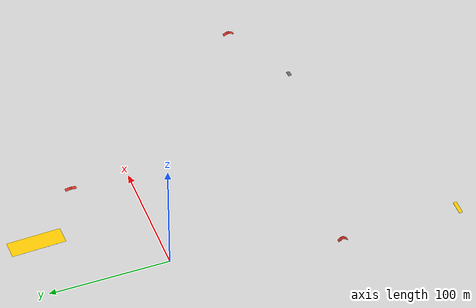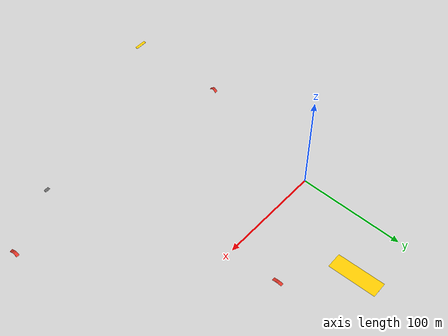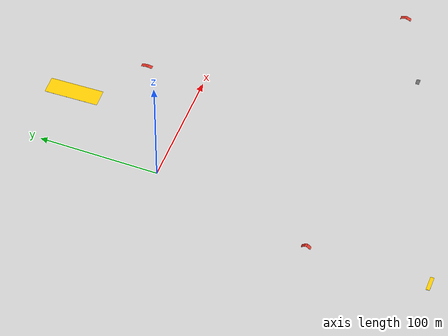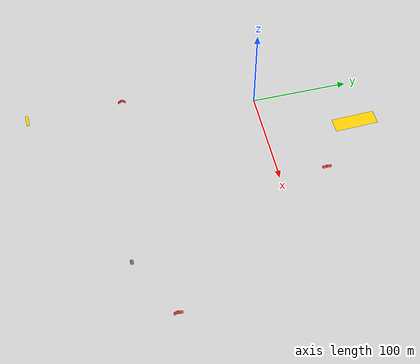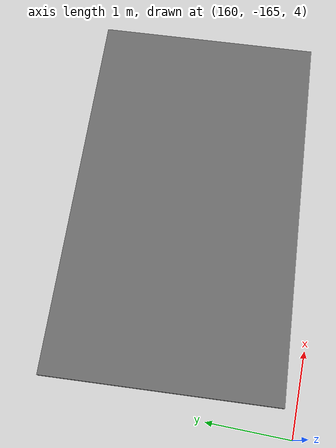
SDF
<sdf version="1.9">
 <world name="Seongdong_gu">
  <plugin filename="gz-sim-physics-system" name="gz::sim::systems::Physics"/>
  <plugin filename="gz-sim-user-commands-system" name="gz::sim::systems::UserCommands"/>
  <plugin filename="gz-sim-scene-broadcaster-system" name="gz::sim::systems::SceneBroadcaster"/>
  <plugin filename="gz-sim-sensors-system" name="gz::sim::systems::Sensors">
   <render_engine>ogre2</render_engine>
  </plugin>
  <plugin filename="gz-sim-imu-system" name="gz::sim::systems::Imu"/>
  <plugin filename="gz-sim-navsat-system" name="gz::sim::systems::NavSat"/>
  <light type="directional" name="sun">
   <pose>0 -7000 7000 0 0 0</pose>
   <diffuse>0.9 0.88 0.82 1</diffuse>
   <specular>0 0 0 1</specular>
   <direction>0.0 0.6 -0.6</direction>
  </light>
  <scene>
   <ambient>0.45 0.48 0.55 1</ambient>
   <grid>false</grid>
   <origin_visual>false</origin_visual>
   <sky><time>10</time><sunrise>6</sunrise><sunset>20</sunset><clouds><speed>12</speed></clouds></sky>
  </scene>
  <physics name="1ms" type="ignored"><dart><collision_detector>bullet</collision_detector></dart></physics>
  <gravity>0 0 -9.8066</gravity>
  <spherical_coordinates>
   <surface_model>EARTH_WGS84</surface_model>
   <latitude_deg>37.54233814881853</latitude_deg>
   <longitude_deg>127.06050643805561</longitude_deg>
   <elevation>15.400000000001455</elevation>
  </spherical_coordinates>
  <include>
   <uri>model://bump_010</uri>
   <pose>162.743332 -163.245650 3.676050 0.000000 0.000000 0.064563</pose>
  </include>
  <include>
   <uri>model://bump_003</uri>
   <pose>52.505330 93.510876 3.656370 0.000000 -0.000000 1.600903</pose>
  </include>
  <include>
   <uri>model://bump_022</uri>
   <pose>-27.233198 -235.226443 2.520000 0.000000 0.000000 0.024563</pose>
  </include>
  <include>
   <uri>model://ramp_010</uri>
   <pose>100.076566 44.356293 2.743270 0.000000 -0.000000 1.592973</pose>
  </include>
  <include>
   <uri>model://ramp_025</uri>
   <pose>225.349015 -136.611578 4.058940 0.000000 -0.000000 1.594563</pose>
  </include>
  <include>
   <uri>model://ramp_040</uri>
   <pose>-28.267320 -139.402662 2.613660 0.000000 -0.000000 1.594563</pose>
  </include>
 </world>
</sdf>

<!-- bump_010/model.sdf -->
<sdf version="1.9">
  <model name="bump_010">
    <static>true</static>
    <link name="link">
      <collision name="collision">
        <geometry>
          <box>
            <!-- ===== 여기 두 숫자만 수정하면 가로/세로 크기가 바뀝니다 ===== -->
            <!-- 순서: 가로(진행방향과 수직, 도로 폭) 세로(로봇 진행방향) 높이(0.10 고정, 절대 수정 X) -->
            <size>5 3 0.10</size>
          </box>
        </geometry>
      </collision>
      <visual name="visual">
        <geometry>
          <box>
            <!-- collision과 반드시 같은 숫자로! (한 곳만 고치면 눈에 보이는 모양과 실제 충돌 영역이 어긋남) -->
            <size>5 3 0.10</size>
          </box>
        </geometry>
        <material>
          <ambient>0.35 0.35 0.35 1</ambient>
          <diffuse>0.4 0.4 0.4 1</diffuse>
        </material>
      </visual>
    </link>
  </model>
</sdf>

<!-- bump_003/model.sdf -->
<sdf version="1.9">
  <model name="bump_005">
    <static>true</static>
    <link name="link">
      <collision name="collision">
        <geometry>
          <box>
            <!-- ===== 여기 두 숫자만 수정하면 가로/세로 크기가 바뀝니다 ===== -->
            <!-- 순서: 가로(도로 폭) 세로(로봇 진행방향) 높이(0.03, "0.05 이하" 규격에서 -->
            <!-- 여유를 두어 더 낮게 설정 - 확실하게 통과되도록. 0.06 이상으로는 절대 올리지 마세요) -->
            <size>45 15 0.03</size>
          </box>
        </geometry>
      </collision>
      <visual name="visual">
        <geometry>
          <box>
            <!-- collision과 반드시 같은 숫자로! -->
            <size>45 15 0.03</size>
          </box>
        </geometry>
        <material>
          <!-- 다른 방지턱들과 통일된 노란색 -->
          <ambient>1 0.75 0 1</ambient>
          <diffuse>1 0.8 0 1</diffuse>
        </material>
      </visual>
    </link>
  </model>
</sdf>

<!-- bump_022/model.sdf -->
<sdf version="1.9">
  <model name="bump_018">
    <static>true</static>
    <link name="link">
      <collision name="collision">
        <geometry>
          <box>
            <!-- ===== 여기 두 숫자만 수정하면 가로/세로 크기가 바뀝니다 ===== -->
            <!-- 순서: 가로(도로 폭) 세로(로봇 진행방향) 높이(0.22, "0.18 이상" 규격에서 -->
            <!-- 여유를 두어 더 높게 설정 - 확실하게 막히도록. 0.17 이하로는 절대 내리지 마세요) -->
            <size>12.5 3 0.22</size>
          </box>
        </geometry>
      </collision>
      <visual name="visual">
        <geometry>
          <box>
            <!-- collision과 반드시 같은 숫자로! -->
            <size>12.5 3 0.22</size>
          </box>
        </geometry>
        <material>
          <!-- 다른 방지턱들과 통일된 노란색 -->
          <ambient>1 0.75 0 1</ambient>
          <diffuse>1 0.8 0 1</diffuse>
        </material>
      </visual>
    </link>
  </model>
</sdf>

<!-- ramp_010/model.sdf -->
<sdf version="1.9">
  <model name="ramp_010">
    <static>true</static>
    <link name="link">

      <!-- 각도: 10.0도 / 경사면 길이: 4.0m / 높이(H)=0.6946m / 수평거리(D)=3.9392m -->

      <collision name="up_collision">
        <pose>1.9696 0 0.3473 0 -0.174533 0</pose>
        <geometry><box><size>4.0 3.0 0.1</size></box></geometry>
      </collision>
      <visual name="up_visual">
        <pose>1.9696 0 0.3473 0 -0.174533 0</pose>
        <geometry><box><size>4.0 3.0 0.1</size></box></geometry>
        <material><ambient>0.8 0.15 0.1 1</ambient><diffuse>0.85 0.2 0.15 1</diffuse></material>
      </visual>

      <collision name="flat_collision">
        <pose>4.6892 0 0.6946 0 0 0</pose>
        <geometry><box><size>1.5 3.0 0.1</size></box></geometry>
      </collision>
      <visual name="flat_visual">
        <pose>4.6892 0 0.6946 0 0 0</pose>
        <geometry><box><size>1.5 3.0 0.1</size></box></geometry>
        <material><ambient>0.8 0.15 0.1 1</ambient><diffuse>0.85 0.2 0.15 1</diffuse></material>
      </visual>

      <collision name="down_collision">
        <pose>7.4088 0 0.3473 0 0.174533 0</pose>
        <geometry><box><size>4.0 3.0 0.1</size></box></geometry>
      </collision>
      <visual name="down_visual">
        <pose>7.4088 0 0.3473 0 0.174533 0</pose>
        <geometry><box><size>4.0 3.0 0.1</size></box></geometry>
        <material><ambient>0.8 0.15 0.1 1</ambient><diffuse>0.85 0.2 0.15 1</diffuse></material>
      </visual>

    </link>
  </model>
</sdf>

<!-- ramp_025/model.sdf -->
<sdf version="1.9">
  <model name="ramp_025">
    <static>true</static>
    <link name="link">

      <!-- 각도: 25.0도 / 경사면 길이: 4.0m / 높이(H)=1.6905m / 수평거리(D)=3.6252m -->

      <collision name="up_collision">
        <pose>1.8126 0 0.8452 0 -0.436332 0</pose>
        <geometry><box><size>4.0 3.0 0.1</size></box></geometry>
      </collision>
      <visual name="up_visual">
        <pose>1.8126 0 0.8452 0 -0.436332 0</pose>
        <geometry><box><size>4.0 3.0 0.1</size></box></geometry>
        <material><ambient>0.8 0.15 0.1 1</ambient><diffuse>0.85 0.2 0.15 1</diffuse></material>
      </visual>

      <collision name="flat_collision">
        <pose>4.3752 0 1.6905 0 0 0</pose>
        <geometry><box><size>1.5 3.0 0.1</size></box></geometry>
      </collision>
      <visual name="flat_visual">
        <pose>4.3752 0 1.6905 0 0 0</pose>
        <geometry><box><size>1.5 3.0 0.1</size></box></geometry>
        <material><ambient>0.8 0.15 0.1 1</ambient><diffuse>0.85 0.2 0.15 1</diffuse></material>
      </visual>

      <collision name="down_collision">
        <pose>6.9378 0 0.8452 0 0.436332 0</pose>
        <geometry><box><size>4.0 3.0 0.1</size></box></geometry>
      </collision>
      <visual name="down_visual">
        <pose>6.9378 0 0.8452 0 0.436332 0</pose>
        <geometry><box><size>4.0 3.0 0.1</size></box></geometry>
        <material><ambient>0.8 0.15 0.1 1</ambient><diffuse>0.85 0.2 0.15 1</diffuse></material>
      </visual>

    </link>
  </model>
</sdf>

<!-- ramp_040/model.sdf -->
<sdf version="1.9">
  <model name="ramp_040">
    <static>true</static>
    <link name="link">

      <!-- 각도: 40.0도 / 경사면 길이: 4.0m / 높이(H)=2.5712m / 수평거리(D)=3.0642m -->

      <collision name="up_collision">
        <pose>1.5321 0 1.2856 0 -0.698132 0</pose>
        <geometry><box><size>4.0 3.0 0.1</size></box></geometry>
      </collision>
      <visual name="up_visual">
        <pose>1.5321 0 1.2856 0 -0.698132 0</pose>
        <geometry><box><size>4.0 3.0 0.1</size></box></geometry>
        <material><ambient>0.8 0.15 0.1 1</ambient><diffuse>0.85 0.2 0.15 1</diffuse></material>
      </visual>

      <collision name="flat_collision">
        <pose>3.8142 0 2.5712 0 0 0</pose>
        <geometry><box><size>1.5 3.0 0.1</size></box></geometry>
      </collision>
      <visual name="flat_visual">
        <pose>3.8142 0 2.5712 0 0 0</pose>
        <geometry><box><size>1.5 3.0 0.1</size></box></geometry>
        <material><ambient>0.8 0.15 0.1 1</ambient><diffuse>0.85 0.2 0.15 1</diffuse></material>
      </visual>

      <collision name="down_collision">
        <pose>6.0963 0 1.2856 0 0.698132 0</pose>
        <geometry><box><size>4.0 3.0 0.1</size></box></geometry>
      </collision>
      <visual name="down_visual">
        <pose>6.0963 0 1.2856 0 0.698132 0</pose>
        <geometry><box><size>4.0 3.0 0.1</size></box></geometry>
        <material><ambient>0.8 0.15 0.1 1</ambient><diffuse>0.85 0.2 0.15 1</diffuse></material>
      </visual>

    </link>
  </model>
</sdf>
